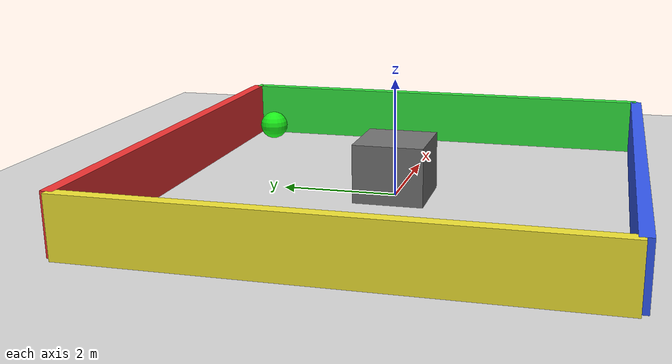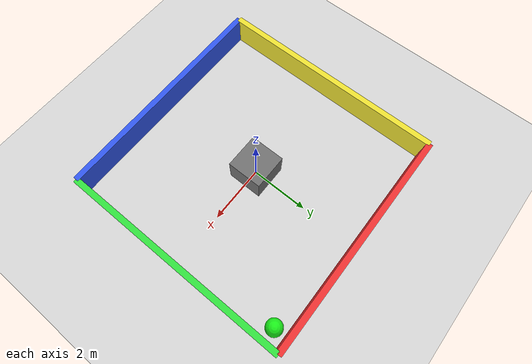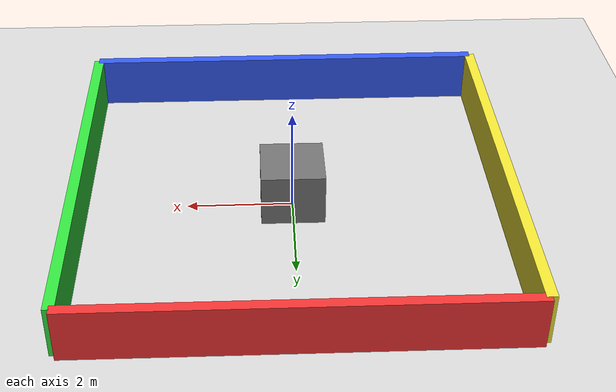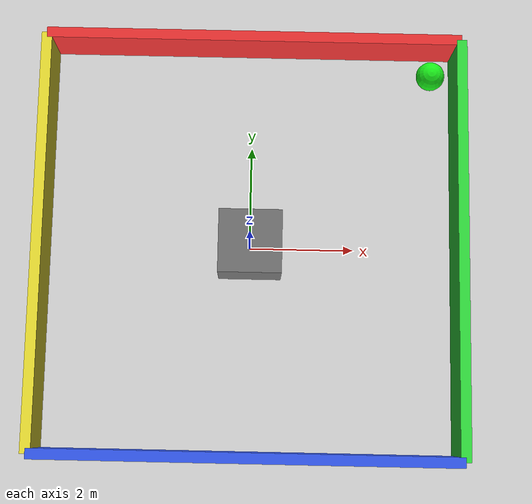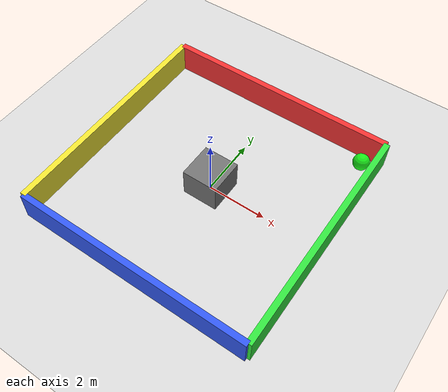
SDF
<?xml version="1.0" ?>
<sdf version="1.8">
  <world name="arena">

    <!-- ===== Scene : 明るく ===== -->
    <scene>
      <ambient>0.75 0.75 0.75 1</ambient>
      <background>0.92 0.96 1.0 1</background>
    </scene>

    <!-- ===== GUI : 上から俯瞰（全体が入る高さ） ===== -->
    <gui fullscreen="false">
      <camera name="user_camera">
        <!-- x y z roll pitch yaw -->
        <pose>-2 -2 10 0 1.57 0</pose>
      </camera>
    </gui>

    <!-- ===== Light : しっかり明るく ===== -->
    <light name="sun" type="directional">
      <pose>0 0 20 0 0 0</pose>
      <direction>-0.5 -0.5 -1</direction>
      <diffuse>1 1 1 1</diffuse>
      <specular>0.3 0.3 0.3 1</specular>
      <attenuation>
        <range>100</range>
        <constant>0.9</constant>
        <linear>0.01</linear>
        <quadratic>0.001</quadratic>
      </attenuation>
    </light>

    <!-- 追加の補助光（暗い側のつぶれ防止） -->
    <light name="fill" type="directional">
      <pose>0 0 15 0 0 0</pose>
      <direction>0.4 0.2 -1</direction>
      <diffuse>0.6 0.6 0.65 1</diffuse>
      <specular>0.15 0.15 0.15 1</specular>
    </light>

    <!-- ===== Ground ===== -->
    <model name="ground">
      <static>true</static>
      <link name="link">
        <collision name="collision">
          <geometry>
            <plane>
              <normal>0 0 1</normal>
              <size>20 20</size>
            </plane>
          </geometry>
        </collision>
        <visual name="visual">
          <geometry>
            <plane>
              <normal>0 0 1</normal>
              <size>20 20</size>
            </plane>
          </geometry>
          <material>
            <ambient>0.75 0.75 0.75 1</ambient>
            <diffuse>0.85 0.85 0.85 1</diffuse>
            <specular>0.08 0.08 0.08 1</specular>
          </material>
        </visual>
      </link>
    </model>

    <!-- ===== Walls : arena [-4,4] ===== -->
    <!-- North (赤) -->
    <model name="wall_n">
      <static>true</static>
      <pose>0 4 0.5 0 0 0</pose>
      <link name="link">
        <collision name="col"><geometry><box><size>8 0.2 1</size></box></geometry></collision>
        <visual name="vis">
          <geometry><box><size>8 0.2 1</size></box></geometry>
          <material>
            <ambient>0.55 0.10 0.10 1</ambient>
            <diffuse>0.95 0.20 0.20 1</diffuse>
            <specular>0.12 0.12 0.12 1</specular>
            <emissive>0.05 0.01 0.01 1</emissive>
          </material>
        </visual>
      </link>
    </model>

    <!-- South (青) -->
    <model name="wall_s">
      <static>true</static>
      <pose>0 -4 0.5 0 0 0</pose>
      <link name="link">
        <collision name="col"><geometry><box><size>8 0.2 1</size></box></geometry></collision>
        <visual name="vis">
          <geometry><box><size>8 0.2 1</size></box></geometry>
          <material>
            <ambient>0.10 0.15 0.55 1</ambient>
            <diffuse>0.20 0.35 0.95 1</diffuse>
            <specular>0.12 0.12 0.12 1</specular>
            <emissive>0.01 0.02 0.06 1</emissive>
          </material>
        </visual>
      </link>
    </model>

    <!-- East (緑) -->
    <model name="wall_e">
      <static>true</static>
      <pose>4 0 0.5 0 0 0</pose>
      <link name="link">
        <collision name="col"><geometry><box><size>0.2 8 1</size></box></geometry></collision>
        <visual name="vis">
          <geometry><box><size>0.2 8 1</size></box></geometry>
          <material>
            <ambient>0.10 0.45 0.10 1</ambient>
            <diffuse>0.20 0.90 0.25 1</diffuse>
            <specular>0.12 0.12 0.12 1</specular>
            <emissive>0.01 0.05 0.01 1</emissive>
          </material>
        </visual>
      </link>
    </model>

    <!-- West (黄) -->
    <model name="wall_w">
      <static>true</static>
      <pose>-4 0 0.5 0 0 0</pose>
      <link name="link">
        <collision name="col"><geometry><box><size>0.2 8 1</size></box></geometry></collision>
        <visual name="vis">
          <geometry><box><size>0.2 8 1</size></box></geometry>
          <material>
            <ambient>0.55 0.50 0.10 1</ambient>
            <diffuse>0.95 0.90 0.20 1</diffuse>
            <specular>0.12 0.12 0.12 1</specular>
            <emissive>0.06 0.05 0.01 1</emissive>
          </material>
        </visual>
      </link>
    </model>

    <!-- ===== Center obstacle (濃いグレーだけど黒つぶれしない) ===== -->
    <model name="center_box">
      <static>true</static>
      <pose>0 0 0.5 0 0 0</pose>
      <link name="link">
        <collision name="col"><geometry><box><size>1.2 1.2 1</size></box></geometry></collision>
        <visual name="vis">
          <geometry><box><size>1.2 1.2 1</size></box></geometry>
          <material>
            <ambient>0.25 0.25 0.25 1</ambient>
            <diffuse>0.45 0.45 0.45 1</diffuse>
            <specular>0.18 0.18 0.18 1</specular>
            <emissive>0.02 0.02 0.02 1</emissive>
          </material>
        </visual>
      </link>
    </model>

    <!-- ===== Goal marker (光らせて見失わない) ===== -->
    <model name="goal_marker">
      <static>true</static>
      <pose>3.5 3.5 0.25 0 0 0</pose>
      <link name="link">
        <visual name="vis">
          <geometry><sphere><radius>0.28</radius></sphere></geometry>
          <material>
            <ambient>0.10 0.90 0.10 1</ambient>
            <diffuse>0.10 0.95 0.10 1</diffuse>
            <specular>0.25 0.25 0.25 1</specular>
            <emissive>0.25 1.00 0.25 1</emissive>
          </material>
        </visual>
      </link>
    </model>

  </world>
</sdf>
